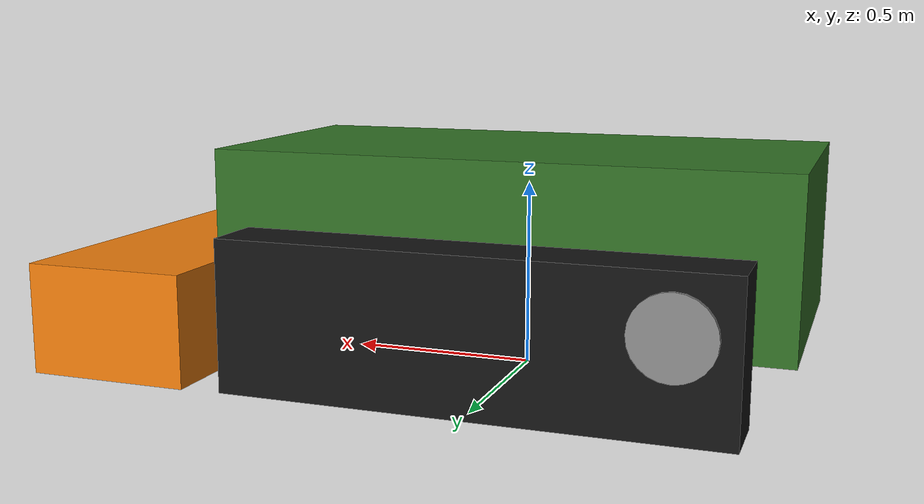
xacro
<?xml version="1.0"?>
<robot xmlns:xacro="http://www.ros.org/wiki/xacro" name="tank01">

  <!-- ===== Variant ========================================================
       full     : full design (docs/02)
       prototyp : budget prototype on a 1250x800x410 mm tracked chassis (docs/14) -->
  <xacro:arg name="variant" default="full"/>
  <xacro:property name="variant" value="$(arg variant)"/>
  <xacro:property name="proto" value="${variant == 'prototyp'}"/>

  <!-- ===== Parameters ===================================================== -->
  <xacro:property name="PI" value="3.14159265"/>
  <xacro:property name="track_width" value="${0.62 if proto else 0.95}"/>  <!-- centre to centre -->
  <xacro:property name="track_belt_width" value="0.18"/>
  <xacro:property name="track_length" value="${1.25 if proto else 1.30}"/>
  <xacro:property name="track_height" value="${0.36 if proto else 0.40}"/>
  <xacro:property name="sprocket_radius" value="${0.09 if proto else 0.105}"/>
  <xacro:property name="axle_height" value="${0.18 if proto else 0.20}"/>
  <xacro:property name="chassis_length" value="${1.20 if proto else 1.50}"/>
  <xacro:property name="chassis_width" value="${0.44 if proto else 0.75}"/>
  <xacro:property name="chassis_height" value="${0.30 if proto else 0.45}"/>
  <xacro:property name="mass_total" value="${330.0 if proto else 355.0}"/>
  <xacro:property name="track_mass" value="${40.0 if proto else 45.0}"/>
  <xacro:property name="mower_mass" value="${25.0 if proto else 65.0}"/>
  <!-- mower deck: prototype = 0.55 m rotary deck, full = 1.0 m flail mower -->
  <xacro:property name="mower_x" value="${0.92 if proto else 0.98}"/>
  <xacro:property name="mower_size" value="${'0.55 0.62 0.20' if proto else '0.45 1.15 0.30'}"/>

  <material name="green"><color rgba="0.20 0.45 0.15 1.0"/></material>
  <material name="black"><color rgba="0.08 0.08 0.08 1.0"/></material>
  <material name="grey"><color rgba="0.55 0.55 0.55 1.0"/></material>
  <material name="orange"><color rgba="0.95 0.50 0.05 1.0"/></material>

  <xacro:macro name="box_inertia" params="m x y z">
    <inertia ixx="${m*(y*y+z*z)/12}" ixy="0" ixz="0"
             iyy="${m*(x*x+z*z)/12}" iyz="0" izz="${m*(x*x+y*y)/12}"/>
  </xacro:macro>

  <xacro:macro name="fixed_sensor" params="name parent xyz rpy">
    <link name="${name}"/>
    <joint name="${name}_joint" type="fixed">
      <parent link="${parent}"/>
      <child link="${name}"/>
      <origin xyz="${xyz}" rpy="${rpy}"/>
    </joint>
  </xacro:macro>

  <!-- ===== Base ============================================================ -->
  <link name="base_footprint"/>

  <link name="base_link">
    <visual>
      <origin xyz="0 0 ${chassis_height/2 - 0.05}"/>
      <geometry><box size="${chassis_length} ${chassis_width} ${chassis_height}"/></geometry>
      <material name="green"/>
    </visual>
    <collision>
      <origin xyz="0 0 ${chassis_height/2 - 0.05}"/>
      <geometry><box size="${chassis_length} ${chassis_width} ${chassis_height}"/></geometry>
    </collision>
    <inertial>
      <origin xyz="0 0 0.15"/>
      <mass value="${mass_total - 2*track_mass - mower_mass}"/>
      <xacro:box_inertia m="${mass_total - 2*track_mass - mower_mass}" x="${chassis_length}"
                         y="${chassis_width}" z="${chassis_height}"/>
    </inertial>
  </link>

  <joint name="base_footprint_joint" type="fixed">
    <parent link="base_footprint"/>
    <child link="base_link"/>
    <origin xyz="0 0 ${axle_height}"/>
  </joint>

  <!-- ===== Tracks ========================================================== -->
  <xacro:macro name="track" params="side reflect">
    <link name="track_${side}">
      <visual>
        <geometry><box size="${track_length} ${track_belt_width} ${track_height}"/></geometry>
        <material name="black"/>
      </visual>
      <collision>
        <geometry><box size="${track_length} ${track_belt_width} ${track_height}"/></geometry>
      </collision>
      <inertial>
        <mass value="${track_mass}"/>
        <xacro:box_inertia m="${track_mass}" x="${track_length}" y="${track_belt_width}" z="${track_height}"/>
      </inertial>
    </link>
    <joint name="track_${side}_joint" type="fixed">
      <parent link="base_link"/>
      <child link="track_${side}"/>
      <origin xyz="0 ${reflect*track_width/2} 0"/>
    </joint>

    <!-- Rear drive sprocket, position published by base_node via /joint_states -->
    <link name="sprocket_${side}">
      <visual>
        <origin rpy="${PI/2} 0 0"/>
        <geometry><cylinder radius="${sprocket_radius}" length="${track_belt_width + 0.02}"/></geometry>
        <material name="grey"/>
      </visual>
    </link>
    <joint name="sprocket_${side}_joint" type="continuous">
      <parent link="track_${side}"/>
      <child link="sprocket_${side}"/>
      <origin xyz="${-track_length/2 + sprocket_radius + 0.05} 0 0.05"/>
      <axis xyz="0 1 0"/>
    </joint>
  </xacro:macro>

  <xacro:track side="left" reflect="1"/>
  <xacro:track side="right" reflect="-1"/>

  <!-- ===== Front-mounted mower ============================================= -->
  <link name="mower_link">
    <visual>
      <geometry><box size="${mower_size}"/></geometry>
      <material name="orange"/>
    </visual>
    <collision>
      <geometry><box size="${mower_size}"/></geometry>
    </collision>
    <inertial>
      <mass value="${mower_mass}"/>
      <inertia ixx="1.0" ixy="0" ixz="0" iyy="1.0" iyz="0" izz="1.0"/>
    </inertial>
  </link>
  <joint name="mower_joint" type="fixed">
    <parent link="base_link"/>
    <child link="mower_link"/>
    <origin xyz="${mower_x} 0 -0.05"/>
  </joint>

  <!-- ===== Sensors (nominal poses – calibrate!) ============================ -->
  <xacro:fixed_sensor name="imu_link"         parent="base_link" xyz="0.0 0.0 0.15"   rpy="0 0 0"/>
  <xacro:fixed_sensor name="camera_link"      parent="base_link" xyz="${0.60 if proto else 0.76} 0.0 0.70" rpy="0 0.20 0"/>
  <xacro:fixed_sensor name="rear_camera_link" parent="base_link" xyz="-0.78 0.0 0.60" rpy="0 0.25 ${PI}"/>
  <xacro:if value="${proto}">
    <!-- UM982: ANT1 = gnss_rear (master), ANT2 = gnss_front → baseline 1.0 m along x -->
    <xacro:fixed_sensor name="gnss_front"     parent="base_link" xyz="0.50 0.0 0.75"  rpy="0 0 0"/>
    <xacro:fixed_sensor name="gnss_rear"      parent="base_link" xyz="-0.50 0.0 0.75" rpy="0 0 0"/>
    <!-- Unitree L2 (frame name of the unilidar_sdk2 driver), mounted level on the mast -->
    <xacro:fixed_sensor name="unilidar_lidar" parent="base_link" xyz="0.45 0.0 0.90"  rpy="0 0 0"/>
  </xacro:if>
  <xacro:unless value="${proto}">
    <xacro:fixed_sensor name="gnss_front"     parent="base_link" xyz="0.60 0.0 0.78"  rpy="0 0 0"/>
    <xacro:fixed_sensor name="gnss_rear"      parent="base_link" xyz="-0.60 0.0 0.78" rpy="0 0 0"/>
    <xacro:fixed_sensor name="os_sensor"      parent="base_link" xyz="0.55 0.0 0.95"  rpy="0 0.10 0"/>
  </xacro:unless>

  <!-- Ultrasonic ring US1..US6 (see docs/04_sensorik.md, section 2) -->
  <xacro:fixed_sensor name="us1_link" parent="base_link" xyz="1.21 0.30 0.10"   rpy="0 0 0.15"/>
  <xacro:fixed_sensor name="us2_link" parent="base_link" xyz="1.21 -0.30 0.10"  rpy="0 0 -0.15"/>
  <xacro:fixed_sensor name="us3_link" parent="base_link" xyz="0.60 -0.58 0.20"  rpy="0 0 ${-PI/2}"/>
  <xacro:fixed_sensor name="us4_link" parent="base_link" xyz="-0.70 -0.58 0.20" rpy="0 0 ${-PI/2}"/>
  <xacro:fixed_sensor name="us5_link" parent="base_link" xyz="-0.70 0.58 0.20"  rpy="0 0 ${PI/2}"/>
  <xacro:fixed_sensor name="us6_link" parent="base_link" xyz="0.60 0.58 0.20"   rpy="0 0 ${PI/2}"/>

</robot>
